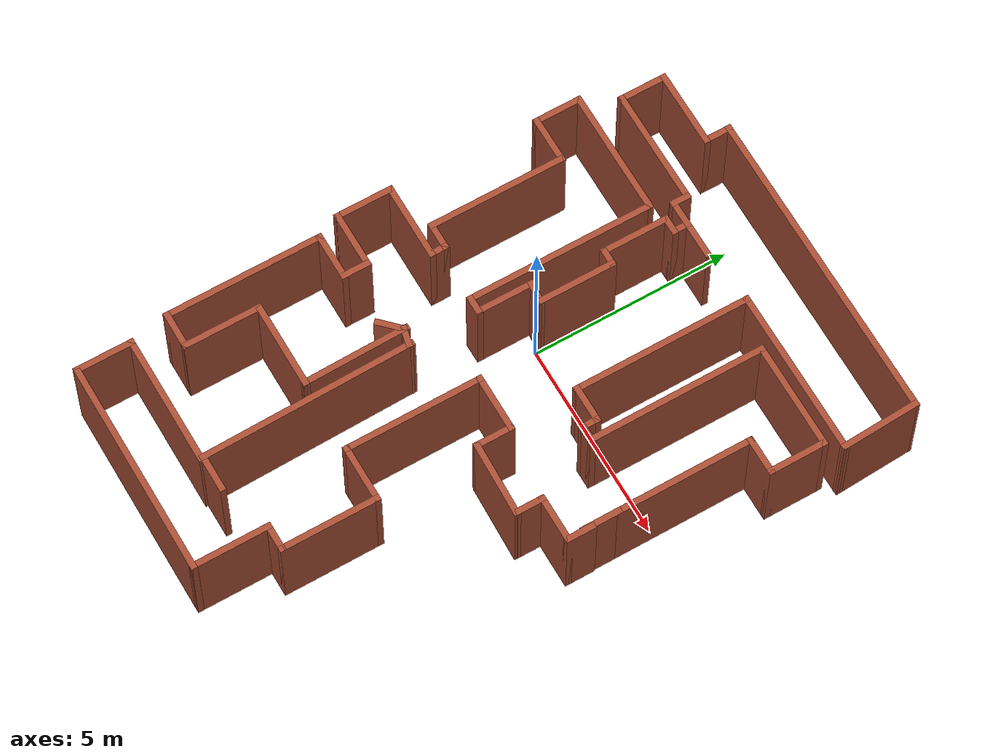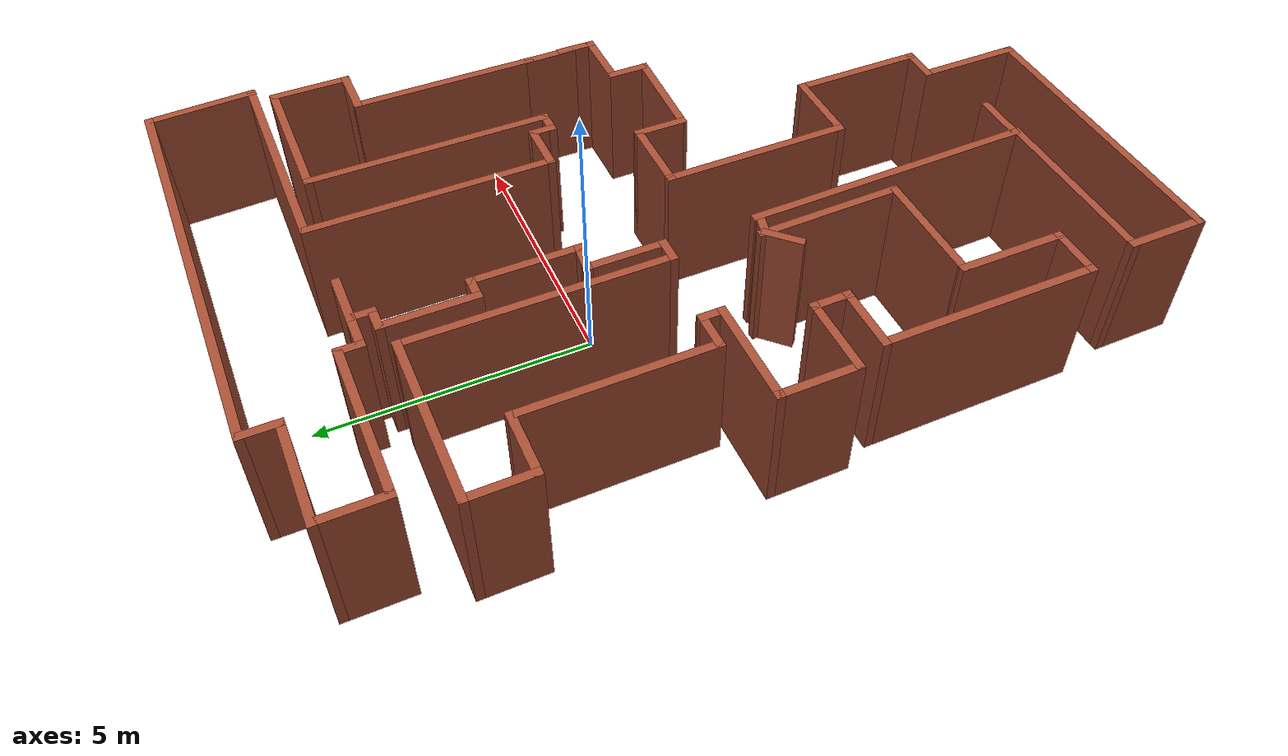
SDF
<?xml version='1.0'?>
<sdf version='1.6'>
  <model name='map_74'>
    <pose frame=''>1.06646 -1.74507 0 0 -0 0</pose>
    <link name='Wall_0'>
      <collision name='Wall_0_Collision'>
        <geometry>
          <box>
            <size>8 0.15 2.5</size>
          </box>
        </geometry>
        <pose frame=''>0 0 1.25 0 -0 0</pose>
      </collision>
      <visual name='Wall_0_Visual'>
        <pose frame=''>0 0 1.25 0 -0 0</pose>
        <geometry>
          <box>
            <size>8 0.15 2.5</size>
          </box>
        </geometry>
        <material>
          <script>
            <uri>file://media/materials/scripts/gazebo.material</uri>
            <name>Gazebo/Bricks</name>
          </script>
          <ambient>1 1 1 1</ambient>
        </material>
        <meta>
          <layer>0</layer>
        </meta>
      </visual>
      <pose frame=''>1.18616 7.74572 0 0 -0 3.14159</pose>
    </link>
    <link name='Wall_1'>
      <collision name='Wall_1_Collision'>
        <geometry>
          <box>
            <size>0.75 0.15 2.5</size>
          </box>
        </geometry>
        <pose frame=''>0 0 1.25 0 -0 0</pose>
      </collision>
      <visual name='Wall_1_Visual'>
        <pose frame=''>0 0 1.25 0 -0 0</pose>
        <geometry>
          <box>
            <size>0.75 0.15 2.5</size>
          </box>
        </geometry>
        <material>
          <script>
            <uri>file://media/materials/scripts/gazebo.material</uri>
            <name>Gazebo/Bricks</name>
          </script>
          <ambient>1 1 1 1</ambient>
        </material>
        <meta>
          <layer>0</layer>
        </meta>
      </visual>
      <pose frame=''>-2.73884 7.44572 0 0 -0 -1.5708</pose>
    </link>
    <link name='Wall_10'>
      <collision name='Wall_10_Collision'>
        <geometry>
          <box>
            <size>0.5 0.15 2.5</size>
          </box>
        </geometry>
        <pose frame=''>0 0 1.25 0 -0 0</pose>
      </collision>
      <visual name='Wall_10_Visual'>
        <pose frame=''>0 0 1.25 0 -0 0</pose>
        <geometry>
          <box>
            <size>0.5 0.15 2.5</size>
          </box>
        </geometry>
        <material>
          <script>
            <uri>file://media/materials/scripts/gazebo.material</uri>
            <name>Gazebo/Bricks</name>
          </script>
          <ambient>1 1 1 1</ambient>
        </material>
        <meta>
          <layer>0</layer>
        </meta>
      </visual>
      <pose frame=''>-1.31384 5.34572 0 0 -0 3.14159</pose>
    </link>
    <link name='Wall_11'>
      <collision name='Wall_11_Collision'>
        <geometry>
          <box>
            <size>1.75 0.15 2.5</size>
          </box>
        </geometry>
        <pose frame=''>0 0 1.25 0 -0 0</pose>
      </collision>
      <visual name='Wall_11_Visual'>
        <pose frame=''>0 0 1.25 0 -0 0</pose>
        <geometry>
          <box>
            <size>1.75 0.15 2.5</size>
          </box>
        </geometry>
        <material>
          <script>
            <uri>file://media/materials/scripts/gazebo.material</uri>
            <name>Gazebo/Bricks</name>
          </script>
          <ambient>1 1 1 1</ambient>
        </material>
        <meta>
          <layer>0</layer>
        </meta>
      </visual>
      <pose frame=''>-1.48884 4.54572 0 0 -0 -1.5708</pose>
    </link>
    <link name='Wall_12'>
      <collision name='Wall_12_Collision'>
        <geometry>
          <box>
            <size>0.5 0.15 2.5</size>
          </box>
        </geometry>
        <pose frame=''>0 0 1.25 0 -0 0</pose>
      </collision>
      <visual name='Wall_12_Visual'>
        <pose frame=''>0 0 1.25 0 -0 0</pose>
        <geometry>
          <box>
            <size>0.5 0.15 2.5</size>
          </box>
        </geometry>
        <material>
          <script>
            <uri>file://media/materials/scripts/gazebo.material</uri>
            <name>Gazebo/Bricks</name>
          </script>
          <ambient>1 1 1 1</ambient>
        </material>
        <meta>
          <layer>0</layer>
        </meta>
      </visual>
      <pose frame=''>-1.31384 3.74572 0 0 -0 0</pose>
    </link>
    <link name='Wall_13'>
      <collision name='Wall_13_Collision'>
        <geometry>
          <box>
            <size>2 0.15 2.5</size>
          </box>
        </geometry>
        <pose frame=''>0 0 1.25 0 -0 0</pose>
      </collision>
      <visual name='Wall_13_Visual'>
        <pose frame=''>0 0 1.25 0 -0 0</pose>
        <geometry>
          <box>
            <size>2 0.15 2.5</size>
          </box>
        </geometry>
        <material>
          <script>
            <uri>file://media/materials/scripts/gazebo.material</uri>
            <name>Gazebo/Bricks</name>
          </script>
          <ambient>1 1 1 1</ambient>
        </material>
        <meta>
          <layer>0</layer>
        </meta>
      </visual>
      <pose frame=''>-1.13884 2.82072 0 0 -0 -1.5708</pose>
    </link>
    <link name='Wall_16'>
      <collision name='Wall_16_Collision'>
        <geometry>
          <box>
            <size>0.621345 0.15 2.5</size>
          </box>
        </geometry>
        <pose frame=''>0 0 1.25 0 -0 0</pose>
      </collision>
      <visual name='Wall_16_Visual'>
        <pose frame=''>0 0 1.25 0 -0 0</pose>
        <geometry>
          <box>
            <size>0.621345 0.15 2.5</size>
          </box>
        </geometry>
        <material>
          <script>
            <uri>file://media/materials/scripts/gazebo.material</uri>
            <name>Gazebo/Bricks</name>
          </script>
          <ambient>1 1 1 1</ambient>
        </material>
        <meta>
          <layer>0</layer>
        </meta>
      </visual>
      <pose frame=''>-1.37342 1.91847 0 0 -0 -0.096692</pose>
    </link>
    <link name='Wall_18'>
      <collision name='Wall_18_Collision'>
        <geometry>
          <box>
            <size>1.5 0.15 2.5</size>
          </box>
        </geometry>
        <pose frame=''>0 0 1.25 0 -0 0</pose>
      </collision>
      <visual name='Wall_18_Visual'>
        <pose frame=''>0 0 1.25 0 -0 0</pose>
        <geometry>
          <box>
            <size>1.5 0.15 2.5</size>
          </box>
        </geometry>
        <material>
          <script>
            <uri>file://media/materials/scripts/gazebo.material</uri>
            <name>Gazebo/Bricks</name>
          </script>
          <ambient>1 1 1 1</ambient>
        </material>
        <meta>
          <layer>0</layer>
        </meta>
      </visual>
      <pose frame=''>-1.60799 1.26623 0 0 -0 -1.5708</pose>
    </link>
    <link name='Wall_19'>
      <collision name='Wall_19_Collision'>
        <geometry>
          <box>
            <size>0.5 0.15 2.5</size>
          </box>
        </geometry>
        <pose frame=''>0 0 1.25 0 -0 0</pose>
      </collision>
      <visual name='Wall_19_Visual'>
        <pose frame=''>0 0 1.25 0 -0 0</pose>
        <geometry>
          <box>
            <size>0.5 0.15 2.5</size>
          </box>
        </geometry>
        <material>
          <script>
            <uri>file://media/materials/scripts/gazebo.material</uri>
            <name>Gazebo/Bricks</name>
          </script>
          <ambient>1 1 1 1</ambient>
        </material>
        <meta>
          <layer>0</layer>
        </meta>
      </visual>
      <pose frame=''>-1.78299 0.591226 0 0 -0 3.14159</pose>
    </link>
    <link name='Wall_2'>
      <collision name='Wall_2_Collision'>
        <geometry>
          <box>
            <size>2 0.15 2.5</size>
          </box>
        </geometry>
        <pose frame=''>0 0 1.25 0 -0 0</pose>
      </collision>
      <visual name='Wall_2_Visual'>
        <pose frame=''>0 0 1.25 0 -0 0</pose>
        <geometry>
          <box>
            <size>2 0.15 2.5</size>
          </box>
        </geometry>
        <material>
          <script>
            <uri>file://media/materials/scripts/gazebo.material</uri>
            <name>Gazebo/Bricks</name>
          </script>
          <ambient>1 1 1 1</ambient>
        </material>
        <meta>
          <layer>0</layer>
        </meta>
      </visual>
      <pose frame=''>-3.66384 7.14572 0 0 -0 3.14159</pose>
    </link>
    <link name='Wall_20'>
      <collision name='Wall_20_Collision'>
        <geometry>
          <box>
            <size>4.75 0.15 2.5</size>
          </box>
        </geometry>
        <pose frame=''>0 0 1.25 0 -0 0</pose>
      </collision>
      <visual name='Wall_20_Visual'>
        <pose frame=''>0 0 1.25 0 -0 0</pose>
        <geometry>
          <box>
            <size>4.75 0.15 2.5</size>
          </box>
        </geometry>
        <material>
          <script>
            <uri>file://media/materials/scripts/gazebo.material</uri>
            <name>Gazebo/Bricks</name>
          </script>
          <ambient>1 1 1 1</ambient>
        </material>
        <meta>
          <layer>0</layer>
        </meta>
      </visual>
      <pose frame=''>-1.95799 2.89123 0 0 -0 1.5708</pose>
    </link>
    <link name='Wall_21'>
      <collision name='Wall_21_Collision'>
        <geometry>
          <box>
            <size>3.25 0.15 2.5</size>
          </box>
        </geometry>
        <pose frame=''>0 0 1.25 0 -0 0</pose>
      </collision>
      <visual name='Wall_21_Visual'>
        <pose frame=''>0 0 1.25 0 -0 0</pose>
        <geometry>
          <box>
            <size>3.25 0.15 2.5</size>
          </box>
        </geometry>
        <material>
          <script>
            <uri>file://media/materials/scripts/gazebo.material</uri>
            <name>Gazebo/Bricks</name>
          </script>
          <ambient>1 1 1 1</ambient>
        </material>
        <meta>
          <layer>0</layer>
        </meta>
      </visual>
      <pose frame=''>-3.50799 5.19123 0 0 -0 3.14159</pose>
    </link>
    <link name='Wall_22'>
      <collision name='Wall_22_Collision'>
        <geometry>
          <box>
            <size>1.25 0.15 2.5</size>
          </box>
        </geometry>
        <pose frame=''>0 0 1.25 0 -0 0</pose>
      </collision>
      <visual name='Wall_22_Visual'>
        <pose frame=''>0 0 1.25 0 -0 0</pose>
        <geometry>
          <box>
            <size>1.25 0.15 2.5</size>
          </box>
        </geometry>
        <material>
          <script>
            <uri>file://media/materials/scripts/gazebo.material</uri>
            <name>Gazebo/Bricks</name>
          </script>
          <ambient>1 1 1 1</ambient>
        </material>
        <meta>
          <layer>0</layer>
        </meta>
      </visual>
      <pose frame=''>-5.05799 4.64123 0 0 -0 -1.5708</pose>
    </link>
    <link name='Wall_23'>
      <collision name='Wall_23_Collision'>
        <geometry>
          <box>
            <size>1.25 0.15 2.5</size>
          </box>
        </geometry>
        <pose frame=''>0 0 1.25 0 -0 0</pose>
      </collision>
      <visual name='Wall_23_Visual'>
        <pose frame=''>0 0 1.25 0 -0 0</pose>
        <geometry>
          <box>
            <size>1.25 0.15 2.5</size>
          </box>
        </geometry>
        <material>
          <script>
            <uri>file://media/materials/scripts/gazebo.material</uri>
            <name>Gazebo/Bricks</name>
          </script>
          <ambient>1 1 1 1</ambient>
        </material>
        <meta>
          <layer>0</layer>
        </meta>
      </visual>
      <pose frame=''>-4.50799 4.09123 0 0 -0 0</pose>
    </link>
    <link name='Wall_26'>
      <collision name='Wall_26_Collision'>
        <geometry>
          <box>
            <size>3.5 0.15 2.5</size>
          </box>
        </geometry>
        <pose frame=''>0 0 1.25 0 -0 0</pose>
      </collision>
      <visual name='Wall_26_Visual'>
        <pose frame=''>0 0 1.25 0 -0 0</pose>
        <geometry>
          <box>
            <size>3.5 0.15 2.5</size>
          </box>
        </geometry>
        <material>
          <script>
            <uri>file://media/materials/scripts/gazebo.material</uri>
            <name>Gazebo/Bricks</name>
          </script>
          <ambient>1 1 1 1</ambient>
        </material>
        <meta>
          <layer>0</layer>
        </meta>
      </visual>
      <pose frame=''>-3.95799 2.41623 0 0 -0 -1.5708</pose>
    </link>
    <link name='Wall_27'>
      <collision name='Wall_27_Collision'>
        <geometry>
          <box>
            <size>0.75 0.15 2.5</size>
          </box>
        </geometry>
        <pose frame=''>0 0 1.25 0 -0 0</pose>
      </collision>
      <visual name='Wall_27_Visual'>
        <pose frame=''>0 0 1.25 0 -0 0</pose>
        <geometry>
          <box>
            <size>0.75 0.15 2.5</size>
          </box>
        </geometry>
        <material>
          <script>
            <uri>file://media/materials/scripts/gazebo.material</uri>
            <name>Gazebo/Bricks</name>
          </script>
          <ambient>1 1 1 1</ambient>
        </material>
        <meta>
          <layer>0</layer>
        </meta>
      </visual>
      <pose frame=''>-3.65799 0.741226 0 0 -0 0</pose>
    </link>
    <link name='Wall_3'>
      <collision name='Wall_3_Collision'>
        <geometry>
          <box>
            <size>1.25 0.15 2.5</size>
          </box>
        </geometry>
        <pose frame=''>0 0 1.25 0 -0 0</pose>
      </collision>
      <visual name='Wall_3_Visual'>
        <pose frame=''>0 0 1.25 0 -0 0</pose>
        <geometry>
          <box>
            <size>1.25 0.15 2.5</size>
          </box>
        </geometry>
        <material>
          <script>
            <uri>file://media/materials/scripts/gazebo.material</uri>
            <name>Gazebo/Bricks</name>
          </script>
          <ambient>1 1 1 1</ambient>
        </material>
        <meta>
          <layer>0</layer>
        </meta>
      </visual>
      <pose frame=''>-4.58884 6.59572 0 0 -0 -1.5708</pose>
    </link>
    <link name='Wall_30'>
      <collision name='Wall_30_Collision'>
        <geometry>
          <box>
            <size>0.5 0.15 2.5</size>
          </box>
        </geometry>
        <pose frame=''>0 0 1.25 0 -0 0</pose>
      </collision>
      <visual name='Wall_30_Visual'>
        <pose frame=''>0 0 1.25 0 -0 0</pose>
        <geometry>
          <box>
            <size>0.5 0.15 2.5</size>
          </box>
        </geometry>
        <material>
          <script>
            <uri>file://media/materials/scripts/gazebo.material</uri>
            <name>Gazebo/Bricks</name>
          </script>
          <ambient>1 1 1 1</ambient>
        </material>
        <meta>
          <layer>0</layer>
        </meta>
      </visual>
      <pose frame=''>-3.35799 0.566226 0 0 -0 -1.5708</pose>
    </link>
    <link name='Wall_31'>
      <collision name='Wall_31_Collision'>
        <geometry>
          <box>
            <size>2 0.15 2.5</size>
          </box>
        </geometry>
        <pose frame=''>0 0 1.25 0 -0 0</pose>
      </collision>
      <visual name='Wall_31_Visual'>
        <pose frame=''>0 0 1.25 0 -0 0</pose>
        <geometry>
          <box>
            <size>2 0.15 2.5</size>
          </box>
        </geometry>
        <material>
          <script>
            <uri>file://media/materials/scripts/gazebo.material</uri>
            <name>Gazebo/Bricks</name>
          </script>
          <ambient>1 1 1 1</ambient>
        </material>
        <meta>
          <layer>0</layer>
        </meta>
      </visual>
      <pose frame=''>-4.28299 0.391226 0 0 -0 3.14159</pose>
    </link>
    <link name='Wall_32'>
      <collision name='Wall_32_Collision'>
        <geometry>
          <box>
            <size>1.5 0.15 2.5</size>
          </box>
        </geometry>
        <pose frame=''>0 0 1.25 0 -0 0</pose>
      </collision>
      <visual name='Wall_32_Visual'>
        <pose frame=''>0 0 1.25 0 -0 0</pose>
        <geometry>
          <box>
            <size>1.5 0.15 2.5</size>
          </box>
        </geometry>
        <material>
          <script>
            <uri>file://media/materials/scripts/gazebo.material</uri>
            <name>Gazebo/Bricks</name>
          </script>
          <ambient>1 1 1 1</ambient>
        </material>
        <meta>
          <layer>0</layer>
        </meta>
      </visual>
      <pose frame=''>-5.20799 -0.283774 0 0 -0 -1.5708</pose>
    </link>
    <link name='Wall_36'>
      <collision name='Wall_36_Collision'>
        <geometry>
          <box>
            <size>1.5 0.15 2.5</size>
          </box>
        </geometry>
        <pose frame=''>0 0 1.25 0 -0 0</pose>
      </collision>
      <visual name='Wall_36_Visual'>
        <pose frame=''>0 0 1.25 0 -0 0</pose>
        <geometry>
          <box>
            <size>1.5 0.15 2.5</size>
          </box>
        </geometry>
        <material>
          <script>
            <uri>file://media/materials/scripts/gazebo.material</uri>
            <name>Gazebo/Bricks</name>
          </script>
          <ambient>1 1 1 1</ambient>
        </material>
        <meta>
          <layer>0</layer>
        </meta>
      </visual>
      <pose frame=''>-4.53299 -0.958774 0 0 -0 0</pose>
    </link>
    <link name='Wall_37'>
      <collision name='Wall_37_Collision'>
        <geometry>
          <box>
            <size>0.75 0.15 2.5</size>
          </box>
        </geometry>
        <pose frame=''>0 0 1.25 0 -0 0</pose>
      </collision>
      <visual name='Wall_37_Visual'>
        <pose frame=''>0 0 1.25 0 -0 0</pose>
        <geometry>
          <box>
            <size>0.75 0.15 2.5</size>
          </box>
        </geometry>
        <material>
          <script>
            <uri>file://media/materials/scripts/gazebo.material</uri>
            <name>Gazebo/Bricks</name>
          </script>
          <ambient>1 1 1 1</ambient>
        </material>
        <meta>
          <layer>0</layer>
        </meta>
      </visual>
      <pose frame=''>-3.85799 -1.25877 0 0 -0 -1.5708</pose>
    </link>
    <link name='Wall_38'>
      <collision name='Wall_38_Collision'>
        <geometry>
          <box>
            <size>1.25 0.15 2.5</size>
          </box>
        </geometry>
        <pose frame=''>0 0 1.25 0 -0 0</pose>
      </collision>
      <visual name='Wall_38_Visual'>
        <pose frame=''>0 0 1.25 0 -0 0</pose>
        <geometry>
          <box>
            <size>1.25 0.15 2.5</size>
          </box>
        </geometry>
        <material>
          <script>
            <uri>file://media/materials/scripts/gazebo.material</uri>
            <name>Gazebo/Bricks</name>
          </script>
          <ambient>1 1 1 1</ambient>
        </material>
        <meta>
          <layer>0</layer>
        </meta>
      </visual>
      <pose frame=''>-4.40799 -1.55877 0 0 -0 3.14159</pose>
    </link>
    <link name='Wall_39'>
      <collision name='Wall_39_Collision'>
        <geometry>
          <box>
            <size>4 0.15 2.5</size>
          </box>
        </geometry>
        <pose frame=''>0 0 1.25 0 -0 0</pose>
      </collision>
      <visual name='Wall_39_Visual'>
        <pose frame=''>0 0 1.25 0 -0 0</pose>
        <geometry>
          <box>
            <size>4 0.15 2.5</size>
          </box>
        </geometry>
        <material>
          <script>
            <uri>file://media/materials/scripts/gazebo.material</uri>
            <name>Gazebo/Bricks</name>
          </script>
          <ambient>1 1 1 1</ambient>
        </material>
        <meta>
          <layer>0</layer>
        </meta>
      </visual>
      <pose frame=''>-4.95799 -3.48377 0 0 -0 -1.5708</pose>
    </link>
    <link name='Wall_40'>
      <collision name='Wall_40_Collision'>
        <geometry>
          <box>
            <size>1 0.15 2.5</size>
          </box>
        </geometry>
        <pose frame=''>0 0 1.25 0 -0 0</pose>
      </collision>
      <visual name='Wall_40_Visual'>
        <pose frame=''>0 0 1.25 0 -0 0</pose>
        <geometry>
          <box>
            <size>1 0.15 2.5</size>
          </box>
        </geometry>
        <material>
          <script>
            <uri>file://media/materials/scripts/gazebo.material</uri>
            <name>Gazebo/Bricks</name>
          </script>
          <ambient>1 1 1 1</ambient>
        </material>
        <meta>
          <layer>0</layer>
        </meta>
      </visual>
      <pose frame=''>-4.53299 -5.40877 0 0 -0 0</pose>
    </link>
    <link name='Wall_41'>
      <collision name='Wall_41_Collision'>
        <geometry>
          <box>
            <size>2 0.15 2.5</size>
          </box>
        </geometry>
        <pose frame=''>0 0 1.25 0 -0 0</pose>
      </collision>
      <visual name='Wall_41_Visual'>
        <pose frame=''>0 0 1.25 0 -0 0</pose>
        <geometry>
          <box>
            <size>2 0.15 2.5</size>
          </box>
        </geometry>
        <material>
          <script>
            <uri>file://media/materials/scripts/gazebo.material</uri>
            <name>Gazebo/Bricks</name>
          </script>
          <ambient>1 1 1 1</ambient>
        </material>
        <meta>
          <layer>0</layer>
        </meta>
      </visual>
      <pose frame=''>-4.10799 -4.48377 0 0 -0 1.5708</pose>
    </link>
    <link name='Wall_42'>
      <collision name='Wall_42_Collision'>
        <geometry>
          <box>
            <size>2.25 0.15 2.5</size>
          </box>
        </geometry>
        <pose frame=''>0 0 1.25 0 -0 0</pose>
      </collision>
      <visual name='Wall_42_Visual'>
        <pose frame=''>0 0 1.25 0 -0 0</pose>
        <geometry>
          <box>
            <size>2.25 0.15 2.5</size>
          </box>
        </geometry>
        <material>
          <script>
            <uri>file://media/materials/scripts/gazebo.material</uri>
            <name>Gazebo/Bricks</name>
          </script>
          <ambient>1 1 1 1</ambient>
        </material>
        <meta>
          <layer>0</layer>
        </meta>
      </visual>
      <pose frame=''>-3.05799 -3.55877 0 0 -0 0</pose>
    </link>
    <link name='Wall_43'>
      <collision name='Wall_43_Collision'>
        <geometry>
          <box>
            <size>2.71457 0.15 2.5</size>
          </box>
        </geometry>
        <pose frame=''>0 0 1.25 0 -0 0</pose>
      </collision>
      <visual name='Wall_43_Visual'>
        <pose frame=''>0 0 1.25 0 -0 0</pose>
        <geometry>
          <box>
            <size>2.71457 0.15 2.5</size>
          </box>
        </geometry>
        <material>
          <script>
            <uri>file://media/materials/scripts/gazebo.material</uri>
            <name>Gazebo/Bricks</name>
          </script>
          <ambient>1 1 1 1</ambient>
        </material>
        <meta>
          <layer>0</layer>
        </meta>
      </visual>
      <pose frame=''>-2.03474 -2.27677 0 0 -0 1.59166</pose>
    </link>
    <link name='Wall_44'>
      <collision name='Wall_44_Collision'>
        <geometry>
          <box>
            <size>0.551918 0.15 2.5</size>
          </box>
        </geometry>
        <pose frame=''>0 0 1.25 0 -0 0</pose>
      </collision>
      <visual name='Wall_44_Visual'>
        <pose frame=''>0 0 1.25 0 -0 0</pose>
        <geometry>
          <box>
            <size>0.551918 0.15 2.5</size>
          </box>
        </geometry>
        <material>
          <script>
            <uri>file://media/materials/scripts/gazebo.material</uri>
            <name>Gazebo/Bricks</name>
          </script>
          <ambient>1 1 1 1</ambient>
        </material>
        <meta>
          <layer>0</layer>
        </meta>
      </visual>
      <pose frame=''>-1.8657 -1.09356 0 0 -0 -0.227339</pose>
    </link>
    <link name='Wall_45'>
      <collision name='Wall_45_Collision'>
        <geometry>
          <box>
            <size>5.4116 0.15 2.5</size>
          </box>
        </geometry>
        <pose frame=''>0 0 1.25 0 -0 0</pose>
      </collision>
      <visual name='Wall_45_Visual'>
        <pose frame=''>0 0 1.25 0 -0 0</pose>
        <geometry>
          <box>
            <size>5.4116 0.15 2.5</size>
          </box>
        </geometry>
        <material>
          <script>
            <uri>file://media/materials/scripts/gazebo.material</uri>
            <name>Gazebo/Bricks</name>
          </script>
          <ambient>1 1 1 1</ambient>
        </material>
        <meta>
          <layer>0</layer>
        </meta>
      </visual>
      <pose frame=''>-1.61641 -3.7156 0 0 -0 -1.55046</pose>
    </link>
    <link name='Wall_46'>
      <collision name='Wall_46_Collision'>
        <geometry>
          <box>
            <size>3.35745 0.15 2.5</size>
          </box>
        </geometry>
        <pose frame=''>0 0 1.25 0 -0 0</pose>
      </collision>
      <visual name='Wall_46_Visual'>
        <pose frame=''>0 0 1.25 0 -0 0</pose>
        <geometry>
          <box>
            <size>3.35745 0.15 2.5</size>
          </box>
        </geometry>
        <material>
          <script>
            <uri>file://media/materials/scripts/gazebo.material</uri>
            <name>Gazebo/Bricks</name>
          </script>
          <ambient>1 1 1 1</ambient>
        </material>
        <meta>
          <layer>0</layer>
        </meta>
      </visual>
      <pose frame=''>-3.16641 -6.39936 0 0 -0 -3.14159</pose>
    </link>
    <link name='Wall_47'>
      <collision name='Wall_47_Collision'>
        <geometry>
          <box>
            <size>1.5 0.15 2.5</size>
          </box>
        </geometry>
        <pose frame=''>0 0 1.25 0 -0 0</pose>
      </collision>
      <visual name='Wall_47_Visual'>
        <pose frame=''>0 0 1.25 0 -0 0</pose>
        <geometry>
          <box>
            <size>1.5 0.15 2.5</size>
          </box>
        </geometry>
        <material>
          <script>
            <uri>file://media/materials/scripts/gazebo.material</uri>
            <name>Gazebo/Bricks</name>
          </script>
          <ambient>1 1 1 1</ambient>
        </material>
        <meta>
          <layer>0</layer>
        </meta>
      </visual>
      <pose frame=''>-4.76991 -7.07436 0 0 -0 -1.5708</pose>
    </link>
    <link name='Wall_48'>
      <collision name='Wall_48_Collision'>
        <geometry>
          <box>
            <size>5.5 0.15 2.5</size>
          </box>
        </geometry>
        <pose frame=''>0 0 1.25 0 -0 0</pose>
      </collision>
      <visual name='Wall_48_Visual'>
        <pose frame=''>0 0 1.25 0 -0 0</pose>
        <geometry>
          <box>
            <size>5.5 0.15 2.5</size>
          </box>
        </geometry>
        <material>
          <script>
            <uri>file://media/materials/scripts/gazebo.material</uri>
            <name>Gazebo/Bricks</name>
          </script>
          <ambient>1 1 1 1</ambient>
        </material>
        <meta>
          <layer>0</layer>
        </meta>
      </visual>
      <pose frame=''>-2.09491 -7.74936 0 0 -0 0</pose>
    </link>
    <link name='Wall_49'>
      <collision name='Wall_49_Collision'>
        <geometry>
          <box>
            <size>2 0.15 2.5</size>
          </box>
        </geometry>
        <pose frame=''>0 0 1.25 0 -0 0</pose>
      </collision>
      <visual name='Wall_49_Visual'>
        <pose frame=''>0 0 1.25 0 -0 0</pose>
        <geometry>
          <box>
            <size>2 0.15 2.5</size>
          </box>
        </geometry>
        <material>
          <script>
            <uri>file://media/materials/scripts/gazebo.material</uri>
            <name>Gazebo/Bricks</name>
          </script>
          <ambient>1 1 1 1</ambient>
        </material>
        <meta>
          <layer>0</layer>
        </meta>
      </visual>
      <pose frame=''>0.580086 -6.82436 0 0 -0 1.5708</pose>
    </link>
    <link name='Wall_50'>
      <collision name='Wall_50_Collision'>
        <geometry>
          <box>
            <size>0.75 0.15 2.5</size>
          </box>
        </geometry>
        <pose frame=''>0 0 1.25 0 -0 0</pose>
      </collision>
      <visual name='Wall_50_Visual'>
        <pose frame=''>0 0 1.25 0 -0 0</pose>
        <geometry>
          <box>
            <size>0.75 0.15 2.5</size>
          </box>
        </geometry>
        <material>
          <script>
            <uri>file://media/materials/scripts/gazebo.material</uri>
            <name>Gazebo/Bricks</name>
          </script>
          <ambient>1 1 1 1</ambient>
        </material>
        <meta>
          <layer>0</layer>
        </meta>
      </visual>
      <pose frame=''>0.880086 -5.89936 0 0 -0 0</pose>
    </link>
    <link name='Wall_51'>
      <collision name='Wall_51_Collision'>
        <geometry>
          <box>
            <size>2.5 0.15 2.5</size>
          </box>
        </geometry>
        <pose frame=''>0 0 1.25 0 -0 0</pose>
      </collision>
      <visual name='Wall_51_Visual'>
        <pose frame=''>0 0 1.25 0 -0 0</pose>
        <geometry>
          <box>
            <size>2.5 0.15 2.5</size>
          </box>
        </geometry>
        <material>
          <script>
            <uri>file://media/materials/scripts/gazebo.material</uri>
            <name>Gazebo/Bricks</name>
          </script>
          <ambient>1 1 1 1</ambient>
        </material>
        <meta>
          <layer>0</layer>
        </meta>
      </visual>
      <pose frame=''>1.18009 -4.72436 0 0 -0 1.5708</pose>
    </link>
    <link name='Wall_52'>
      <collision name='Wall_52_Collision'>
        <geometry>
          <box>
            <size>1.5 0.15 2.5</size>
          </box>
        </geometry>
        <pose frame=''>0 0 1.25 0 -0 0</pose>
      </collision>
      <visual name='Wall_52_Visual'>
        <pose frame=''>0 0 1.25 0 -0 0</pose>
        <geometry>
          <box>
            <size>1.5 0.15 2.5</size>
          </box>
        </geometry>
        <material>
          <script>
            <uri>file://media/materials/scripts/gazebo.material</uri>
            <name>Gazebo/Bricks</name>
          </script>
          <ambient>1 1 1 1</ambient>
        </material>
        <meta>
          <layer>0</layer>
        </meta>
      </visual>
      <pose frame=''>0.505086 -3.54936 0 0 -0 3.14159</pose>
    </link>
    <link name='Wall_53'>
      <collision name='Wall_53_Collision'>
        <geometry>
          <box>
            <size>3.5 0.15 2.5</size>
          </box>
        </geometry>
        <pose frame=''>0 0 1.25 0 -0 0</pose>
      </collision>
      <visual name='Wall_53_Visual'>
        <pose frame=''>0 0 1.25 0 -0 0</pose>
        <geometry>
          <box>
            <size>3.5 0.15 2.5</size>
          </box>
        </geometry>
        <material>
          <script>
            <uri>file://media/materials/scripts/gazebo.material</uri>
            <name>Gazebo/Bricks</name>
          </script>
          <ambient>1 1 1 1</ambient>
        </material>
        <meta>
          <layer>0</layer>
        </meta>
      </visual>
      <pose frame=''>-0.169914 -1.87436 0 0 -0 1.5708</pose>
    </link>
    <link name='Wall_54'>
      <collision name='Wall_54_Collision'>
        <geometry>
          <box>
            <size>1.5 0.15 2.5</size>
          </box>
        </geometry>
        <pose frame=''>0 0 1.25 0 -0 0</pose>
      </collision>
      <visual name='Wall_54_Visual'>
        <pose frame=''>0 0 1.25 0 -0 0</pose>
        <geometry>
          <box>
            <size>1.5 0.15 2.5</size>
          </box>
        </geometry>
        <material>
          <script>
            <uri>file://media/materials/scripts/gazebo.material</uri>
            <name>Gazebo/Bricks</name>
          </script>
          <ambient>1 1 1 1</ambient>
        </material>
        <meta>
          <layer>0</layer>
        </meta>
      </visual>
      <pose frame=''>0.505086 -0.199361 0 0 -0 0</pose>
    </link>
    <link name='Wall_55'>
      <collision name='Wall_55_Collision'>
        <geometry>
          <box>
            <size>1 0.15 2.5</size>
          </box>
        </geometry>
        <pose frame=''>0 0 1.25 0 -0 0</pose>
      </collision>
      <visual name='Wall_55_Visual'>
        <pose frame=''>0 0 1.25 0 -0 0</pose>
        <geometry>
          <box>
            <size>1 0.15 2.5</size>
          </box>
        </geometry>
        <material>
          <script>
            <uri>file://media/materials/scripts/gazebo.material</uri>
            <name>Gazebo/Bricks</name>
          </script>
          <ambient>1 1 1 1</ambient>
        </material>
        <meta>
          <layer>0</layer>
        </meta>
      </visual>
      <pose frame=''>1.18009 -0.624361 0 0 -0 -1.5708</pose>
    </link>
    <link name='Wall_59'>
      <collision name='Wall_59_Collision'>
        <geometry>
          <box>
            <size>1.94729 0.15 2.5</size>
          </box>
        </geometry>
        <pose frame=''>0 0 1.25 0 -0 0</pose>
      </collision>
      <visual name='Wall_59_Visual'>
        <pose frame=''>0 0 1.25 0 -0 0</pose>
        <geometry>
          <box>
            <size>1.94729 0.15 2.5</size>
          </box>
        </geometry>
        <material>
          <script>
            <uri>file://media/materials/scripts/gazebo.material</uri>
            <name>Gazebo/Bricks</name>
          </script>
          <ambient>1 1 1 1</ambient>
        </material>
        <meta>
          <layer>0</layer>
        </meta>
      </visual>
      <pose frame=''>2.07834 -1.07611 0 0 -0 -0.029773</pose>
    </link>
    <link name='Wall_6'>
      <collision name='Wall_6_Collision'>
        <geometry>
          <box>
            <size>3 0.15 2.5</size>
          </box>
        </geometry>
        <pose frame=''>0 0 1.25 0 -0 0</pose>
      </collision>
      <visual name='Wall_6_Visual'>
        <pose frame=''>0 0 1.25 0 -0 0</pose>
        <geometry>
          <box>
            <size>3 0.15 2.5</size>
          </box>
        </geometry>
        <material>
          <script>
            <uri>file://media/materials/scripts/gazebo.material</uri>
            <name>Gazebo/Bricks</name>
          </script>
          <ambient>1 1 1 1</ambient>
        </material>
        <meta>
          <layer>0</layer>
        </meta>
      </visual>
      <pose frame=''>-3.16384 6.04572 0 0 -0 0</pose>
    </link>
    <link name='Wall_60'>
      <collision name='Wall_60_Collision'>
        <geometry>
          <box>
            <size>0.75 0.15 2.5</size>
          </box>
        </geometry>
        <pose frame=''>0 0 1.25 0 -0 0</pose>
      </collision>
      <visual name='Wall_60_Visual'>
        <pose frame=''>0 0 1.25 0 -0 0</pose>
        <geometry>
          <box>
            <size>0.75 0.15 2.5</size>
          </box>
        </geometry>
        <material>
          <script>
            <uri>file://media/materials/scripts/gazebo.material</uri>
            <name>Gazebo/Bricks</name>
          </script>
          <ambient>1 1 1 1</ambient>
        </material>
        <meta>
          <layer>0</layer>
        </meta>
      </visual>
      <pose frame=''>2.97658 -0.749361 0 0 -0 1.5708</pose>
    </link>
    <link name='Wall_63'>
      <collision name='Wall_63_Collision'>
        <geometry>
          <box>
            <size>1 0.15 2.5</size>
          </box>
        </geometry>
        <pose frame=''>0 0 1.25 0 -0 0</pose>
      </collision>
      <visual name='Wall_63_Visual'>
        <pose frame=''>0 0 1.25 0 -0 0</pose>
        <geometry>
          <box>
            <size>1 0.15 2.5</size>
          </box>
        </geometry>
        <material>
          <script>
            <uri>file://media/materials/scripts/gazebo.material</uri>
            <name>Gazebo/Bricks</name>
          </script>
          <ambient>1 1 1 1</ambient>
        </material>
        <meta>
          <layer>0</layer>
        </meta>
      </visual>
      <pose frame=''>4.05435 0.399903 0 0 -0 1.5708</pose>
    </link>
    <link name='Wall_64'>
      <collision name='Wall_64_Collision'>
        <geometry>
          <box>
            <size>3.5 0.15 2.5</size>
          </box>
        </geometry>
        <pose frame=''>0 0 1.25 0 -0 0</pose>
      </collision>
      <visual name='Wall_64_Visual'>
        <pose frame=''>0 0 1.25 0 -0 0</pose>
        <geometry>
          <box>
            <size>3.5 0.15 2.5</size>
          </box>
        </geometry>
        <material>
          <script>
            <uri>file://media/materials/scripts/gazebo.material</uri>
            <name>Gazebo/Bricks</name>
          </script>
          <ambient>1 1 1 1</ambient>
        </material>
        <meta>
          <layer>0</layer>
        </meta>
      </visual>
      <pose frame=''>4.05435 2.4999 0 0 -0 1.5708</pose>
    </link>
    <link name='Wall_65'>
      <collision name='Wall_65_Collision'>
        <geometry>
          <box>
            <size>1 0.15 2.5</size>
          </box>
        </geometry>
        <pose frame=''>0 0 1.25 0 -0 0</pose>
      </collision>
      <visual name='Wall_65_Visual'>
        <pose frame=''>0 0 1.25 0 -0 0</pose>
        <geometry>
          <box>
            <size>1 0.15 2.5</size>
          </box>
        </geometry>
        <material>
          <script>
            <uri>file://media/materials/scripts/gazebo.material</uri>
            <name>Gazebo/Bricks</name>
          </script>
          <ambient>1 1 1 1</ambient>
        </material>
        <meta>
          <layer>0</layer>
        </meta>
      </visual>
      <pose frame=''>4.47935 4.1749 0 0 -0 0</pose>
    </link>
    <link name='Wall_66'>
      <collision name='Wall_66_Collision'>
        <geometry>
          <box>
            <size>1.5 0.15 2.5</size>
          </box>
        </geometry>
        <pose frame=''>0 0 1.25 0 -0 0</pose>
      </collision>
      <visual name='Wall_66_Visual'>
        <pose frame=''>0 0 1.25 0 -0 0</pose>
        <geometry>
          <box>
            <size>1.5 0.15 2.5</size>
          </box>
        </geometry>
        <material>
          <script>
            <uri>file://media/materials/scripts/gazebo.material</uri>
            <name>Gazebo/Bricks</name>
          </script>
          <ambient>1 1 1 1</ambient>
        </material>
        <meta>
          <layer>0</layer>
        </meta>
      </visual>
      <pose frame=''>4.90435 4.8499 0 0 -0 1.5708</pose>
    </link>
    <link name='Wall_67'>
      <collision name='Wall_67_Collision'>
        <geometry>
          <box>
            <size>2.75 0.15 2.5</size>
          </box>
        </geometry>
        <pose frame=''>0 0 1.25 0 -0 0</pose>
      </collision>
      <visual name='Wall_67_Visual'>
        <pose frame=''>0 0 1.25 0 -0 0</pose>
        <geometry>
          <box>
            <size>2.75 0.15 2.5</size>
          </box>
        </geometry>
        <material>
          <script>
            <uri>file://media/materials/scripts/gazebo.material</uri>
            <name>Gazebo/Bricks</name>
          </script>
          <ambient>1 1 1 1</ambient>
        </material>
        <meta>
          <layer>0</layer>
        </meta>
      </visual>
      <pose frame=''>3.60435 5.5249 0 0 -0 3.14159</pose>
    </link>
    <link name='Wall_68'>
      <collision name='Wall_68_Collision'>
        <geometry>
          <box>
            <size>4.5 0.15 2.5</size>
          </box>
        </geometry>
        <pose frame=''>0 0 1.25 0 -0 0</pose>
      </collision>
      <visual name='Wall_68_Visual'>
        <pose frame=''>0 0 1.25 0 -0 0</pose>
        <geometry>
          <box>
            <size>4.5 0.15 2.5</size>
          </box>
        </geometry>
        <material>
          <script>
            <uri>file://media/materials/scripts/gazebo.material</uri>
            <name>Gazebo/Bricks</name>
          </script>
          <ambient>1 1 1 1</ambient>
        </material>
        <meta>
          <layer>0</layer>
        </meta>
      </visual>
      <pose frame=''>2.30435 3.3499 0 0 -0 -1.5708</pose>
    </link>
    <link name='Wall_69'>
      <collision name='Wall_69_Collision'>
        <geometry>
          <box>
            <size>0.5 0.15 2.5</size>
          </box>
        </geometry>
        <pose frame=''>0 0 1.25 0 -0 0</pose>
      </collision>
      <visual name='Wall_69_Visual'>
        <pose frame=''>0 0 1.25 0 -0 0</pose>
        <geometry>
          <box>
            <size>0.5 0.15 2.5</size>
          </box>
        </geometry>
        <material>
          <script>
            <uri>file://media/materials/scripts/gazebo.material</uri>
            <name>Gazebo/Bricks</name>
          </script>
          <ambient>1 1 1 1</ambient>
        </material>
        <meta>
          <layer>0</layer>
        </meta>
      </visual>
      <pose frame=''>2.12935 1.1749 0 0 -0 3.14159</pose>
    </link>
    <link name='Wall_7'>
      <collision name='Wall_7_Collision'>
        <geometry>
          <box>
            <size>0.5 0.15 2.5</size>
          </box>
        </geometry>
        <pose frame=''>0 0 1.25 0 -0 0</pose>
      </collision>
      <visual name='Wall_7_Visual'>
        <pose frame=''>0 0 1.25 0 -0 0</pose>
        <geometry>
          <box>
            <size>0.5 0.15 2.5</size>
          </box>
        </geometry>
        <material>
          <script>
            <uri>file://media/materials/scripts/gazebo.material</uri>
            <name>Gazebo/Bricks</name>
          </script>
          <ambient>1 1 1 1</ambient>
        </material>
        <meta>
          <layer>0</layer>
        </meta>
      </visual>
      <pose frame=''>-1.73884 5.87072 0 0 -0 -1.5708</pose>
    </link>
    <link name='Wall_70'>
      <collision name='Wall_70_Collision'>
        <geometry>
          <box>
            <size>0.5 0.15 2.5</size>
          </box>
        </geometry>
        <pose frame=''>0 0 1.25 0 -0 0</pose>
      </collision>
      <visual name='Wall_70_Visual'>
        <pose frame=''>0 0 1.25 0 -0 0</pose>
        <geometry>
          <box>
            <size>0.5 0.15 2.5</size>
          </box>
        </geometry>
        <material>
          <script>
            <uri>file://media/materials/scripts/gazebo.material</uri>
            <name>Gazebo/Bricks</name>
          </script>
          <ambient>1 1 1 1</ambient>
        </material>
        <meta>
          <layer>0</layer>
        </meta>
      </visual>
      <pose frame=''>1.95435 1.3499 0 0 -0 1.5708</pose>
    </link>
    <link name='Wall_71'>
      <collision name='Wall_71_Collision'>
        <geometry>
          <box>
            <size>1 0.15 2.5</size>
          </box>
        </geometry>
        <pose frame=''>0 0 1.25 0 -0 0</pose>
      </collision>
      <visual name='Wall_71_Visual'>
        <pose frame=''>0 0 1.25 0 -0 0</pose>
        <geometry>
          <box>
            <size>1 0.15 2.5</size>
          </box>
        </geometry>
        <material>
          <script>
            <uri>file://media/materials/scripts/gazebo.material</uri>
            <name>Gazebo/Bricks</name>
          </script>
          <ambient>1 1 1 1</ambient>
        </material>
        <meta>
          <layer>0</layer>
        </meta>
      </visual>
      <pose frame=''>1.52935 1.5249 0 0 -0 3.14159</pose>
    </link>
    <link name='Wall_72'>
      <collision name='Wall_72_Collision'>
        <geometry>
          <box>
            <size>4.5 0.15 2.5</size>
          </box>
        </geometry>
        <pose frame=''>0 0 1.25 0 -0 0</pose>
      </collision>
      <visual name='Wall_72_Visual'>
        <pose frame=''>0 0 1.25 0 -0 0</pose>
        <geometry>
          <box>
            <size>4.5 0.15 2.5</size>
          </box>
        </geometry>
        <material>
          <script>
            <uri>file://media/materials/scripts/gazebo.material</uri>
            <name>Gazebo/Bricks</name>
          </script>
          <ambient>1 1 1 1</ambient>
        </material>
        <meta>
          <layer>0</layer>
        </meta>
      </visual>
      <pose frame=''>1.10435 3.6999 0 0 -0 1.5708</pose>
    </link>
    <link name='Wall_73'>
      <collision name='Wall_73_Collision'>
        <geometry>
          <box>
            <size>4.25 0.15 2.5</size>
          </box>
        </geometry>
        <pose frame=''>0 0 1.25 0 -0 0</pose>
      </collision>
      <visual name='Wall_73_Visual'>
        <pose frame=''>0 0 1.25 0 -0 0</pose>
        <geometry>
          <box>
            <size>4.25 0.15 2.5</size>
          </box>
        </geometry>
        <material>
          <script>
            <uri>file://media/materials/scripts/gazebo.material</uri>
            <name>Gazebo/Bricks</name>
          </script>
          <ambient>1 1 1 1</ambient>
        </material>
        <meta>
          <layer>0</layer>
        </meta>
      </visual>
      <pose frame=''>3.15435 5.8749 0 0 -0 0</pose>
    </link>
    <link name='Wall_74'>
      <collision name='Wall_74_Collision'>
        <geometry>
          <box>
            <size>2.02314 0.15 2.5</size>
          </box>
        </geometry>
        <pose frame=''>0 0 1.25 0 -0 0</pose>
      </collision>
      <visual name='Wall_74_Visual'>
        <pose frame=''>0 0 1.25 0 -0 0</pose>
        <geometry>
          <box>
            <size>2.02314 0.15 2.5</size>
          </box>
        </geometry>
        <material>
          <script>
            <uri>file://media/materials/scripts/gazebo.material</uri>
            <name>Gazebo/Bricks</name>
          </script>
          <ambient>1 1 1 1</ambient>
        </material>
        <meta>
          <layer>0</layer>
        </meta>
      </visual>
      <pose frame=''>5.15775 6.81031 0 0 -0 1.62057</pose>
    </link>
    <link name='Wall_76'>
      <collision name='Wall_76_Collision'>
        <geometry>
          <box>
            <size>1 0.15 2.5</size>
          </box>
        </geometry>
        <pose frame=''>0 0 1.25 0 -0 0</pose>
      </collision>
      <visual name='Wall_76_Visual'>
        <pose frame=''>0 0 1.25 0 -0 0</pose>
        <geometry>
          <box>
            <size>1 0.15 2.5</size>
          </box>
        </geometry>
        <material>
          <script>
            <uri>file://media/materials/scripts/gazebo.material</uri>
            <name>Gazebo/Bricks</name>
          </script>
          <ambient>1 1 1 1</ambient>
        </material>
        <meta>
          <layer>0</layer>
        </meta>
      </visual>
      <pose frame=''>-1.13791 -6.34586 0 0 -0 0</pose>
    </link>
    <link name='Wall_78'>
      <collision name='Wall_78_Collision'>
        <geometry>
          <box>
            <size>0.75 0.15 2.5</size>
          </box>
        </geometry>
        <pose frame=''>0 0 1.25 0 -0 0</pose>
      </collision>
      <visual name='Wall_78_Visual'>
        <pose frame=''>0 0 1.25 0 -0 0</pose>
        <geometry>
          <box>
            <size>0.75 0.15 2.5</size>
          </box>
        </geometry>
        <material>
          <script>
            <uri>file://media/materials/scripts/gazebo.material</uri>
            <name>Gazebo/Bricks</name>
          </script>
          <ambient>1 1 1 1</ambient>
        </material>
        <meta>
          <layer>0</layer>
        </meta>
      </visual>
      <pose frame=''>-2.27362 -1.2604 0 0 -0 -2.35619</pose>
    </link>
    <link name='Wall_8'>
      <collision name='Wall_8_Collision'>
        <geometry>
          <box>
            <size>0.75 0.15 2.5</size>
          </box>
        </geometry>
        <pose frame=''>0 0 1.25 0 -0 0</pose>
      </collision>
      <visual name='Wall_8_Visual'>
        <pose frame=''>0 0 1.25 0 -0 0</pose>
        <geometry>
          <box>
            <size>0.75 0.15 2.5</size>
          </box>
        </geometry>
        <material>
          <script>
            <uri>file://media/materials/scripts/gazebo.material</uri>
            <name>Gazebo/Bricks</name>
          </script>
          <ambient>1 1 1 1</ambient>
        </material>
        <meta>
          <layer>0</layer>
        </meta>
      </visual>
      <pose frame=''>-1.43884 5.69572 0 0 -0 0</pose>
    </link>
    <link name='Wall_80'>
      <collision name='Wall_80_Collision'>
        <geometry>
          <box>
            <size>1.25 0.15 2.5</size>
          </box>
        </geometry>
        <pose frame=''>0 0 1.25 0 -0 0</pose>
      </collision>
      <visual name='Wall_80_Visual'>
        <pose frame=''>0 0 1.25 0 -0 0</pose>
        <geometry>
          <box>
            <size>1.25 0.15 2.5</size>
          </box>
        </geometry>
        <material>
          <script>
            <uri>file://media/materials/scripts/gazebo.material</uri>
            <name>Gazebo/Bricks</name>
          </script>
          <ambient>1 1 1 1</ambient>
        </material>
        <meta>
          <layer>0</layer>
        </meta>
      </visual>
      <pose frame=''>3.52658 -0.449361 0 0 -0 0</pose>
    </link>
    <link name='Wall_81'>
      <collision name='Wall_81_Collision'>
        <geometry>
          <box>
            <size>0.75 0.15 2.5</size>
          </box>
        </geometry>
        <pose frame=''>0 0 1.25 0 -0 0</pose>
      </collision>
      <visual name='Wall_81_Visual'>
        <pose frame=''>0 0 1.25 0 -0 0</pose>
        <geometry>
          <box>
            <size>0.75 0.15 2.5</size>
          </box>
        </geometry>
        <material>
          <script>
            <uri>file://media/materials/scripts/gazebo.material</uri>
            <name>Gazebo/Bricks</name>
          </script>
          <ambient>1 1 1 1</ambient>
        </material>
        <meta>
          <layer>0</layer>
        </meta>
      </visual>
      <pose frame=''>4.07658 -0.149361 0 0 -0 1.5708</pose>
    </link>
    <link name='Wall_83'>
      <collision name='Wall_83_Collision'>
        <geometry>
          <box>
            <size>1 0.15 2.5</size>
          </box>
        </geometry>
        <pose frame=''>0 0 1.25 0 -0 0</pose>
      </collision>
      <visual name='Wall_83_Visual'>
        <pose frame=''>0 0 1.25 0 -0 0</pose>
        <geometry>
          <box>
            <size>1 0.15 2.5</size>
          </box>
        </geometry>
        <material>
          <script>
            <uri>file://media/materials/scripts/gazebo.material</uri>
            <name>Gazebo/Bricks</name>
          </script>
          <ambient>1 1 1 1</ambient>
        </material>
        <meta>
          <layer>0</layer>
        </meta>
      </visual>
      <pose frame=''>-0.713844 5.69572 0 0 -0 0</pose>
    </link>
    <link name='Wall_9'>
      <collision name='Wall_9_Collision'>
        <geometry>
          <box>
            <size>0.5 0.15 2.5</size>
          </box>
        </geometry>
        <pose frame=''>0 0 1.25 0 -0 0</pose>
      </collision>
      <visual name='Wall_9_Visual'>
        <pose frame=''>0 0 1.25 0 -0 0</pose>
        <geometry>
          <box>
            <size>0.5 0.15 2.5</size>
          </box>
        </geometry>
        <material>
          <script>
            <uri>file://media/materials/scripts/gazebo.material</uri>
            <name>Gazebo/Bricks</name>
          </script>
          <ambient>1 1 1 1</ambient>
        </material>
        <meta>
          <layer>0</layer>
        </meta>
      </visual>
      <pose frame=''>-1.13884 5.52072 0 0 -0 -1.5708</pose>
    </link>
    <static>1</static>
  </model>
</sdf>
